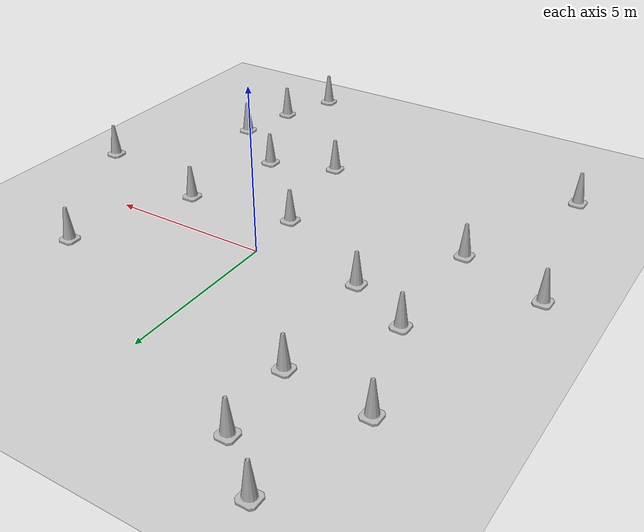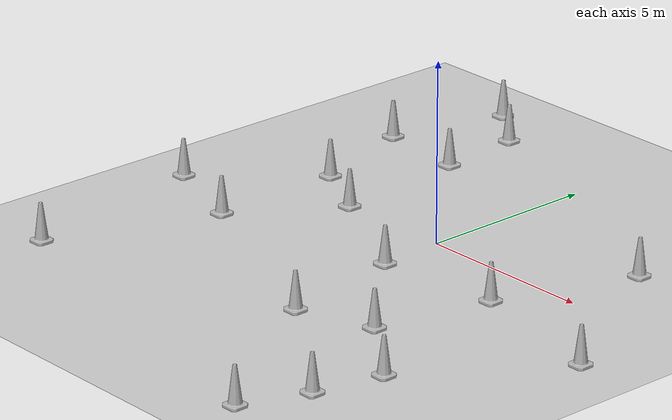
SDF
<sdf version="1.7">
 <world name="default">
  <light name="sun" type="directional">
   <pose>0 0 10 0 -0 0</pose>
   <diffuse>0.8 0.8 0.8 1</diffuse>
   <specular>0.2 0.2 0.2 1</specular>
   <attenuation>
    <range>1000</range>
    <constant>0.9</constant>
    <linear>0.01</linear>
    <quadratic>0.001</quadratic>
   </attenuation>
   <direction>-0.5 0.1 -0.9</direction>
   <spot><inner_angle>0</inner_angle><outer_angle>0</outer_angle><falloff>0</falloff></spot>
  </light>
  <model name="ground_plane">
   <static>1</static>
   <link name="link">
    <collision name="collision">
     <geometry><plane><normal>0 0 1</normal><size>100 100</size></plane></geometry>
     <surface><friction><ode><mu>100</mu><mu2>50</mu2></ode></friction></surface>
    </collision>
    <visual name="visual">
     <cast_shadows>0</cast_shadows>
     <geometry><plane><normal>0 0 1</normal><size>100 100</size></plane></geometry>
     <material>
      <script><uri>file://media/materials/scripts/gazebo.material</uri><name>Gazebo/Grey</name></script>
     </material>
    </visual>
   </link>
  </model>
  <gravity>0 0 -9.8</gravity>
  <magnetic_field>6e-06 2.3e-05 -4.2e-05</magnetic_field>
  <atmosphere type="adiabatic"/>
  <physics type="ode">
   <max_step_size>0.001</max_step_size>
   <real_time_factor>1</real_time_factor>
   <real_time_update_rate>1000</real_time_update_rate>
  </physics>
  <scene><ambient>0.4 0.4 0.4 1</ambient><background>0.7 0.7 0.7 1</background><shadows>1</shadows></scene>
  <audio><device>default</device></audio>
  <spherical_coordinates>
   <surface_model>EARTH_WGS84</surface_model>
   <latitude_deg>0</latitude_deg>
   <longitude_deg>0</longitude_deg>
   <elevation>0</elevation>
   <heading_deg>0</heading_deg>
  </spherical_coordinates>
  <model name="Construction Cone">
   <link name="link">
    <collision name="collision">
     <geometry>
      <mesh><scale>10 10 10</scale><uri>model://construction_cone/meshes/construction_cone.dae</uri></mesh>
     </geometry>
    </collision>
    <visual name="visual">
     <geometry>
      <mesh><scale>10 10 10</scale><uri>model://construction_cone/meshes/construction_cone.dae</uri></mesh>
     </geometry>
    </visual>
    <inertial>
     <inertia><ixx>1</ixx><ixy>0</ixy><ixz>0</ixz><iyy>1</iyy><iyz>0</iyz><izz>1</izz></inertia>
     <mass>1</mass>
    </inertial>
   </link>
   <pose>-3.28445 -0.056267 -0 0 -0 0</pose>
  </model>
  <model name="Construction Cone_0">
   <link name="link">
    <collision name="collision">
     <geometry>
      <mesh><scale>10 10 10</scale><uri>model://construction_cone/meshes/construction_cone.dae</uri></mesh>
     </geometry>
    </collision>
    <visual name="visual">
     <geometry>
      <mesh><scale>10 10 10</scale><uri>model://construction_cone/meshes/construction_cone.dae</uri></mesh>
     </geometry>
    </visual>
    <inertial>
     <inertia><ixx>1</ixx><ixy>0</ixy><ixz>0</ixz><iyy>1</iyy><iyz>0</iyz><izz>1</izz></inertia>
     <mass>1</mass>
    </inertial>
   </link>
   <pose>-5.14063 -2.87316 -0 0 -0 0</pose>
  </model>
  <model name="Construction Cone_0_clone">
   <link name="link">
    <collision name="collision">
     <geometry>
      <mesh><scale>10 10 10</scale><uri>model://construction_cone/meshes/construction_cone.dae</uri></mesh>
     </geometry>
    </collision>
    <visual name="visual">
     <geometry>
      <mesh><scale>10 10 10</scale><uri>model://construction_cone/meshes/construction_cone.dae</uri></mesh>
     </geometry>
    </visual>
    <inertial>
     <inertia><ixx>1</ixx><ixy>0</ixy><ixz>0</ixz><iyy>1</iyy><iyz>0</iyz><izz>1</izz></inertia>
     <mass>1</mass>
    </inertial>
   </link>
   <pose>4.9369 2.39616 -0 0 -0 0</pose>
  </model>
  <model name="Construction Cone_0_clone_0">
   <link name="link">
    <collision name="collision">
     <geometry>
      <mesh><scale>10 10 10</scale><uri>model://construction_cone/meshes/construction_cone.dae</uri></mesh>
     </geometry>
    </collision>
    <visual name="visual">
     <geometry>
      <mesh><scale>10 10 10</scale><uri>model://construction_cone/meshes/construction_cone.dae</uri></mesh>
     </geometry>
    </visual>
    <inertial>
     <inertia><ixx>1</ixx><ixy>0</ixy><ixz>0</ixz><iyy>1</iyy><iyz>0</iyz><izz>1</izz></inertia>
     <mass>1</mass>
    </inertial>
   </link>
   <pose>-3.64342 3.84748 -0 0 -0 0</pose>
  </model>
  <model name="Construction Cone_0_clone_1">
   <link name="link">
    <collision name="collision">
     <geometry>
      <mesh><scale>10 10 10</scale><uri>model://construction_cone/meshes/construction_cone.dae</uri></mesh>
     </geometry>
    </collision>
    <visual name="visual">
     <geometry>
      <mesh><scale>10 10 10</scale><uri>model://construction_cone/meshes/construction_cone.dae</uri></mesh>
     </geometry>
    </visual>
    <inertial>
     <inertia><ixx>1</ixx><ixy>0</ixy><ixz>0</ixz><iyy>1</iyy><iyz>0</iyz><izz>1</izz></inertia>
     <mass>1</mass>
    </inertial>
   </link>
   <pose>-3.85287 6.2599 -1e-06 2e-06 2e-06 0</pose>
  </model>
  <model name="Construction Cone_0_clone_2">
   <link name="link">
    <collision name="collision">
     <geometry>
      <mesh><scale>10 10 10</scale><uri>model://construction_cone/meshes/construction_cone.dae</uri></mesh>
     </geometry>
    </collision>
    <visual name="visual">
     <geometry>
      <mesh><scale>10 10 10</scale><uri>model://construction_cone/meshes/construction_cone.dae</uri></mesh>
     </geometry>
    </visual>
    <inertial>
     <inertia><ixx>1</ixx><ixy>0</ixy><ixz>0</ixz><iyy>1</iyy><iyz>0</iyz><izz>1</izz></inertia>
     <mass>1</mass>
    </inertial>
   </link>
   <pose>3.57559 -1.46656 -0 0 -0 0</pose>
  </model>
  <model name="Construction Cone_0_clone_3">
   <link name="link">
    <collision name="collision">
     <geometry>
      <mesh><scale>10 10 10</scale><uri>model://construction_cone/meshes/construction_cone.dae</uri></mesh>
     </geometry>
    </collision>
    <visual name="visual">
     <geometry>
      <mesh><scale>10 10 10</scale><uri>model://construction_cone/meshes/construction_cone.dae</uri></mesh>
     </geometry>
    </visual>
    <inertial>
     <inertia><ixx>1</ixx><ixy>0</ixy><ixz>0</ixz><iyy>1</iyy><iyz>0</iyz><izz>1</izz></inertia>
     <mass>1</mass>
    </inertial>
   </link>
   <pose>7.71824 -2.42312 -0 1e-06 -0 0</pose>
  </model>
  <model name="Construction Cone_0_clone_4">
   <link name="link">
    <collision name="collision">
     <geometry>
      <mesh><scale>10 10 10</scale><uri>model://construction_cone/meshes/construction_cone.dae</uri></mesh>
     </geometry>
    </collision>
    <visual name="visual">
     <geometry>
      <mesh><scale>10 10 10</scale><uri>model://construction_cone/meshes/construction_cone.dae</uri></mesh>
     </geometry>
    </visual>
    <inertial>
     <inertia><ixx>1</ixx><ixy>0</ixy><ixz>0</ixz><iyy>1</iyy><iyz>0</iyz><izz>1</izz></inertia>
     <mass>1</mass>
    </inertial>
   </link>
   <pose>0.759506 -5.43599 -9e-06 0 -0 0</pose>
  </model>
  <model name="Construction Cone_0_clone_5">
   <link name="link">
    <collision name="collision">
     <geometry>
      <mesh><scale>10 10 10</scale><uri>model://construction_cone/meshes/construction_cone.dae</uri></mesh>
     </geometry>
    </collision>
    <visual name="visual">
     <geometry>
      <mesh><scale>10 10 10</scale><uri>model://construction_cone/meshes/construction_cone.dae</uri></mesh>
     </geometry>
    </visual>
    <inertial>
     <inertia><ixx>1</ixx><ixy>0</ixy><ixz>0</ixz><iyy>1</iyy><iyz>0</iyz><izz>1</izz></inertia>
     <mass>1</mass>
    </inertial>
   </link>
   <pose>4.62577 -8.25952 -0 0 -0 0</pose>
  </model>
  <model name="Construction Cone_0_clone_6">
   <link name="link">
    <collision name="collision">
     <geometry>
      <mesh><scale>10 10 10</scale><uri>model://construction_cone/meshes/construction_cone.dae</uri></mesh>
     </geometry>
    </collision>
    <visual name="visual">
     <geometry>
      <mesh><scale>10 10 10</scale><uri>model://construction_cone/meshes/construction_cone.dae</uri></mesh>
     </geometry>
    </visual>
    <inertial>
     <inertia><ixx>1</ixx><ixy>0</ixy><ixz>0</ixz><iyy>1</iyy><iyz>0</iyz><izz>1</izz></inertia>
     <mass>1</mass>
    </inertial>
   </link>
   <pose>2.86126 -4.70253 0 -0 -0 -0</pose>
  </model>
  <model name="Construction Cone_0_clone_7">
   <link name="link">
    <collision name="collision">
     <geometry>
      <mesh><scale>10 10 10</scale><uri>model://construction_cone/meshes/construction_cone.dae</uri></mesh>
     </geometry>
    </collision>
    <visual name="visual">
     <geometry>
      <mesh><scale>10 10 10</scale><uri>model://construction_cone/meshes/construction_cone.dae</uri></mesh>
     </geometry>
    </visual>
    <inertial>
     <inertia><ixx>1</ixx><ixy>0</ixy><ixz>0</ixz><iyy>1</iyy><iyz>0</iyz><izz>1</izz></inertia>
     <mass>1</mass>
    </inertial>
   </link>
   <pose>0.120484 -1.88272 -0 0 -0 0</pose>
  </model>
  <model name="Construction Cone_0_clone_8">
   <link name="link">
    <collision name="collision">
     <geometry>
      <mesh><scale>10 10 10</scale><uri>model://construction_cone/meshes/construction_cone.dae</uri></mesh>
     </geometry>
    </collision>
    <visual name="visual">
     <geometry>
      <mesh><scale>10 10 10</scale><uri>model://construction_cone/meshes/construction_cone.dae</uri></mesh>
     </geometry>
    </visual>
    <inertial>
     <inertia><ixx>1</ixx><ixy>0</ixy><ixz>0</ixz><iyy>1</iyy><iyz>0</iyz><izz>1</izz></inertia>
     <mass>1</mass>
    </inertial>
   </link>
   <pose>5.03898 -6.35888 -0 0 -0 0</pose>
  </model>
  <model name="Construction Cone_0_clone_9">
   <link name="link">
    <collision name="collision">
     <geometry>
      <mesh><scale>10 10 10</scale><uri>model://construction_cone/meshes/construction_cone.dae</uri></mesh>
     </geometry>
    </collision>
    <visual name="visual">
     <geometry>
      <mesh><scale>10 10 10</scale><uri>model://construction_cone/meshes/construction_cone.dae</uri></mesh>
     </geometry>
    </visual>
    <inertial>
     <inertia><ixx>1</ixx><ixy>0</ixy><ixz>0</ixz><iyy>1</iyy><iyz>0</iyz><izz>1</izz></inertia>
     <mass>1</mass>
    </inertial>
   </link>
   <pose>3.95607 -10.0825 -0 0 -0 0</pose>
  </model>
  <model name="Construction Cone_0_clone_10">
   <link name="link">
    <collision name="collision">
     <geometry>
      <mesh><scale>10 10 10</scale><uri>model://construction_cone/meshes/construction_cone.dae</uri></mesh>
     </geometry>
    </collision>
    <visual name="visual">
     <geometry>
      <mesh><scale>10 10 10</scale><uri>model://construction_cone/meshes/construction_cone.dae</uri></mesh>
     </geometry>
    </visual>
    <inertial>
     <inertia><ixx>1</ixx><ixy>0</ixy><ixz>0</ixz><iyy>1</iyy><iyz>0</iyz><izz>1</izz></inertia>
     <mass>1</mass>
    </inertial>
   </link>
   <pose>-6.82643 -7.50241 -0 0 -0 0</pose>
  </model>
  <model name="Construction Cone_0_clone_11">
   <link name="link">
    <collision name="collision">
     <geometry>
      <mesh><scale>10 10 10</scale><uri>model://construction_cone/meshes/construction_cone.dae</uri></mesh>
     </geometry>
    </collision>
    <visual name="visual">
     <geometry>
      <mesh><scale>10 10 10</scale><uri>model://construction_cone/meshes/construction_cone.dae</uri></mesh>
     </geometry>
    </visual>
    <inertial>
     <inertia><ixx>1</ixx><ixy>0</ixy><ixz>0</ixz><iyy>1</iyy><iyz>0</iyz><izz>1</izz></inertia>
     <mass>1</mass>
    </inertial>
   </link>
   <pose>-6.18413 4.10842 -0 0 -1e-06 0</pose>
  </model>
  <model name="Construction Cone_0_clone_12">
   <link name="link">
    <collision name="collision">
     <geometry>
      <mesh><scale>10 10 10</scale><uri>model://construction_cone/meshes/construction_cone.dae</uri></mesh>
     </geometry>
    </collision>
    <visual name="visual">
     <geometry>
      <mesh><scale>10 10 10</scale><uri>model://construction_cone/meshes/construction_cone.dae</uri></mesh>
     </geometry>
    </visual>
    <inertial>
     <inertia><ixx>1</ixx><ixy>0</ixy><ixz>0</ixz><iyy>1</iyy><iyz>0</iyz><izz>1</izz></inertia>
     <mass>1</mass>
    </inertial>
   </link>
   <pose>-5.31552 7.43001 -1e-06 2e-06 2e-06 0</pose>
  </model>
  <model name="Construction Cone_0_clone_13">
   <link name="link">
    <collision name="collision">
     <geometry>
      <mesh><scale>10 10 10</scale><uri>model://construction_cone/meshes/construction_cone.dae</uri></mesh>
     </geometry>
    </collision>
    <visual name="visual">
     <geometry>
      <mesh><scale>10 10 10</scale><uri>model://construction_cone/meshes/construction_cone.dae</uri></mesh>
     </geometry>
    </visual>
    <inertial>
     <inertia><ixx>1</ixx><ixy>0</ixy><ixz>0</ixz><iyy>1</iyy><iyz>0</iyz><izz>1</izz></inertia>
     <mass>1</mass>
    </inertial>
   </link>
   <pose>-5.18412 0.942467 -0 0 -0 0</pose>
  </model>
  <model name="Construction Cone_0_clone_14">
   <link name="link">
    <collision name="collision">
     <geometry>
      <mesh><scale>10 10 10</scale><uri>model://construction_cone/meshes/construction_cone.dae</uri></mesh>
     </geometry>
    </collision>
    <visual name="visual">
     <geometry>
      <mesh><scale>10 10 10</scale><uri>model://construction_cone/meshes/construction_cone.dae</uri></mesh>
     </geometry>
    </visual>
    <inertial>
     <inertia><ixx>1</ixx><ixy>0</ixy><ixz>0</ixz><iyy>1</iyy><iyz>0</iyz><izz>1</izz></inertia>
     <mass>1</mass>
    </inertial>
   </link>
   <pose>-7.81697 -1.95193 -0 0 -0 0</pose>
  </model>
 </world>
</sdf>
